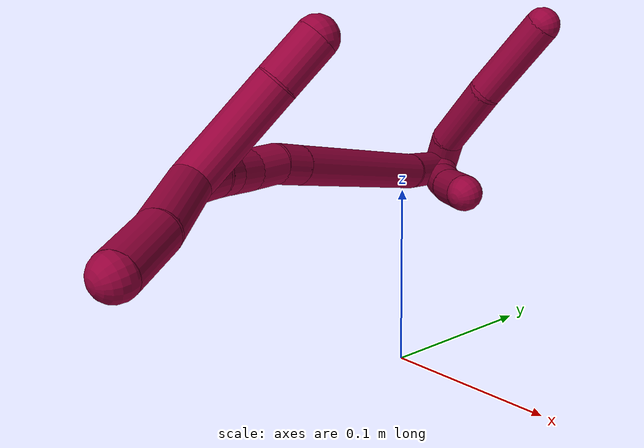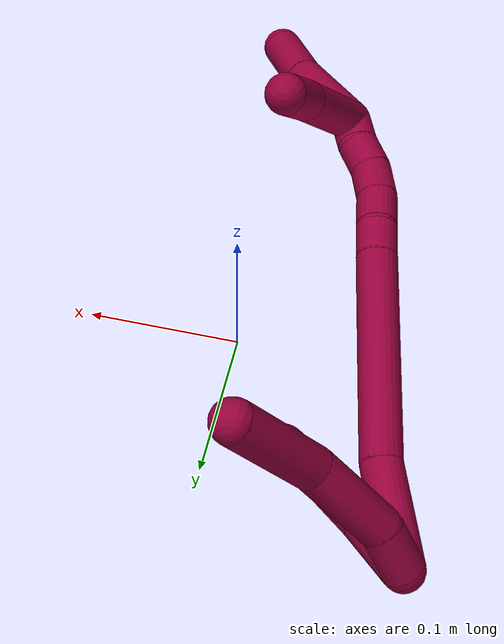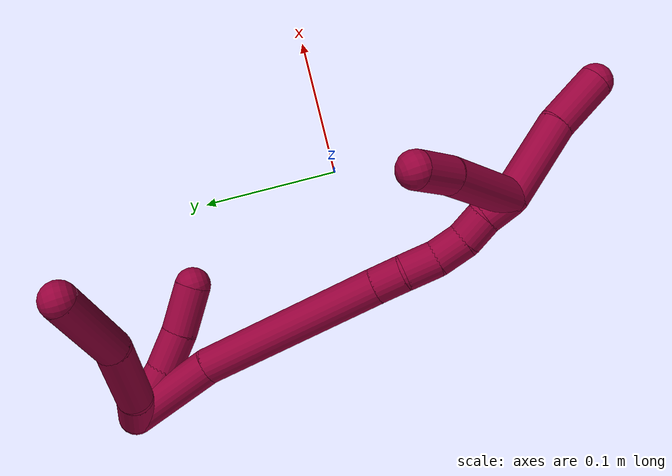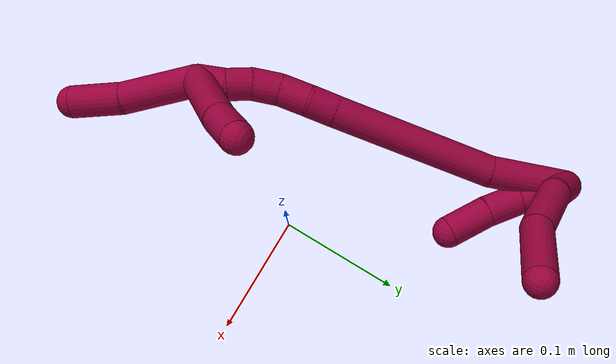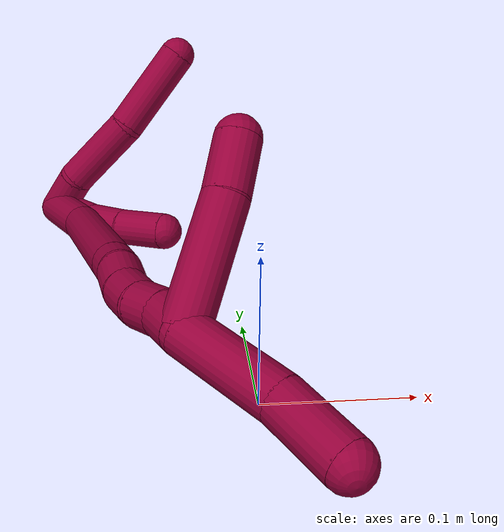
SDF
<sdf version="1.7">
 <world name="default">
  <model name="8">
   <static>0</static>
   <link name="8">
    <collision name="collision-cylinder-e_1_2_8">
     <pose>0.001794 -0.015253 -0.001943 1.69748 0.116135 0.131822</pose>
     <geometry><cylinder><radius>0.0125</radius><length>0.030962</length></cylinder></geometry>
     <surface>
      <friction><ode><mu>1.16</mu><mu2>1.16</mu2><slip1>0</slip1><slip2>0</slip2></ode></friction>
      <contact><ode><kp>1e+06</kp><kd>1</kd><max_vel>0</max_vel><min_depth>0.001</min_depth></ode></contact>
     </surface>
    </collision>
    <visual name="visual-cylinder-e_1_2_8">
     <pose>0.001794 -0.015253 -0.001943 1.69748 0.116135 0.131822</pose>
     <geometry><cylinder><radius>0.0125</radius><length>0.030962</length></cylinder></geometry>
     <material><ambient>0.584314 0 0.227451 1</ambient></material>
    </visual>
    <collision name="collision-cylinder-e_2_8_9">
     <pose>0.013444 -0.056496 -0.00313 1.54174 0.36233 0.352168</pose>
     <geometry><cylinder><radius>0.0125</radius><length>0.055611</length></cylinder></geometry>
     <surface>
      <friction><ode><mu>1.16</mu><mu2>1.16</mu2><slip1>0</slip1><slip2>0</slip2></ode></friction>
      <contact><ode><kp>1e+06</kp><kd>1</kd><max_vel>0</max_vel><min_depth>0.001</min_depth></ode></contact>
     </surface>
    </collision>
    <visual name="visual-cylinder-e_2_8_9">
     <pose>0.013444 -0.056496 -0.00313 1.54174 0.36233 0.352168</pose>
     <geometry><cylinder><radius>0.0125</radius><length>0.055611</length></cylinder></geometry>
     <material><ambient>0.584314 0 0.227451 1</ambient></material>
    </visual>
    <collision name="collision-cylinder-e_3_9_6">
     <pose>0.032714 -0.111252 0.007091 1.25291 0.301397 0.218908</pose>
     <geometry><cylinder><radius>0.0125</radius><length>0.063427</length></cylinder></geometry>
     <surface>
      <friction><ode><mu>1.16</mu><mu2>1.16</mu2><slip1>0</slip1><slip2>0</slip2></ode></friction>
      <contact><ode><kp>1e+06</kp><kd>1</kd><max_vel>0</max_vel><min_depth>0.001</min_depth></ode></contact>
     </surface>
    </collision>
    <visual name="visual-cylinder-e_3_9_6">
     <pose>0.032714 -0.111252 0.007091 1.25291 0.301397 0.218908</pose>
     <geometry><cylinder><radius>0.0125</radius><length>0.063427</length></cylinder></geometry>
     <material><ambient>0.584314 0 0.227451 1</ambient></material>
    </visual>
    <collision name="collision-cylinder-e_1_2_10">
     <pose>0.011022 -0.006192 -0.013712 2.71743 0.632267 1.97728</pose>
     <geometry><cylinder><radius>0.0125</radius><length>0.037301</length></cylinder></geometry>
     <surface>
      <friction><ode><mu>1.16</mu><mu2>1.16</mu2><slip1>0</slip1><slip2>0</slip2></ode></friction>
      <contact><ode><kp>1e+06</kp><kd>1</kd><max_vel>0</max_vel><min_depth>0.001</min_depth></ode></contact>
     </surface>
    </collision>
    <visual name="visual-cylinder-e_1_2_10">
     <pose>0.011022 -0.006192 -0.013712 2.71743 0.632267 1.97728</pose>
     <geometry><cylinder><radius>0.0125</radius><length>0.037301</length></cylinder></geometry>
     <material><ambient>0.584314 0 0.227451 1</ambient></material>
    </visual>
    <collision name="collision-cylinder-e_2_10_11">
     <pose>0.030991 -0.018698 -0.036527 2.53514 0.679354 1.69222</pose>
     <geometry><cylinder><radius>0.0125</radius><length>0.02848</length></cylinder></geometry>
     <surface>
      <friction><ode><mu>1.16</mu><mu2>1.16</mu2><slip1>0</slip1><slip2>0</slip2></ode></friction>
      <contact><ode><kp>1e+06</kp><kd>1</kd><max_vel>0</max_vel><min_depth>0.001</min_depth></ode></contact>
     </surface>
    </collision>
    <visual name="visual-cylinder-e_2_10_11">
     <pose>0.030991 -0.018698 -0.036527 2.53514 0.679354 1.69222</pose>
     <geometry><cylinder><radius>0.0125</radius><length>0.02848</length></cylinder></geometry>
     <material><ambient>0.584314 0 0.227451 1</ambient></material>
    </visual>
    <collision name="collision-cylinder-e_3_11_5">
     <pose>0.051714 -0.033212 -0.054948 2.41992 0.75908 1.62623</pose>
     <geometry><cylinder><radius>0.0125</radius><length>0.034218</length></cylinder></geometry>
     <surface>
      <friction><ode><mu>1.16</mu><mu2>1.16</mu2><slip1>0</slip1><slip2>0</slip2></ode></friction>
      <contact><ode><kp>1e+06</kp><kd>1</kd><max_vel>0</max_vel><min_depth>0.001</min_depth></ode></contact>
     </surface>
    </collision>
    <visual name="visual-cylinder-e_3_11_5">
     <pose>0.051714 -0.033212 -0.054948 2.41992 0.75908 1.62623</pose>
     <geometry><cylinder><radius>0.0125</radius><length>0.034218</length></cylinder></geometry>
     <material><ambient>0.584314 0 0.227451 1</ambient></material>
    </visual>
    <collision name="collision-cylinder-e_1_2_12">
     <pose>0.004926 -0.012339 -0.02816 2.72861 0.158871 0.726303</pose>
     <geometry><cylinder><radius>0.0125</radius><length>0.062274</length></cylinder></geometry>
     <surface>
      <friction><ode><mu>1.16</mu><mu2>1.16</mu2><slip1>0</slip1><slip2>0</slip2></ode></friction>
      <contact><ode><kp>1e+06</kp><kd>1</kd><max_vel>0</max_vel><min_depth>0.001</min_depth></ode></contact>
     </surface>
    </collision>
    <visual name="visual-cylinder-e_1_2_12">
     <pose>0.004926 -0.012339 -0.02816 2.72861 0.158871 0.726303</pose>
     <geometry><cylinder><radius>0.0125</radius><length>0.062274</length></cylinder></geometry>
     <material><ambient>0.584314 0 0.227451 1</ambient></material>
    </visual>
    <collision name="collision-cylinder-e_2_12_13">
     <pose>0.008859 -0.050342 -0.116281 2.73719 -0.015219 -0.074203</pose>
     <geometry><cylinder><radius>0.0125</radius><length>0.13046</length></cylinder></geometry>
     <surface>
      <friction><ode><mu>1.16</mu><mu2>1.16</mu2><slip1>0</slip1><slip2>0</slip2></ode></friction>
      <contact><ode><kp>1e+06</kp><kd>1</kd><max_vel>0</max_vel><min_depth>0.001</min_depth></ode></contact>
     </surface>
    </collision>
    <visual name="visual-cylinder-e_2_12_13">
     <pose>0.008859 -0.050342 -0.116281 2.73719 -0.015219 -0.074203</pose>
     <geometry><cylinder><radius>0.0125</radius><length>0.13046</length></cylinder></geometry>
     <material><ambient>0.584314 0 0.227451 1</ambient></material>
    </visual>
    <collision name="collision-cylinder-e_3_13_14">
     <pose>0.007554 -0.080139 -0.185905 2.73726 -0.029772 -0.145011</pose>
     <geometry><cylinder><radius>0.0125</radius><length>0.021029</length></cylinder></geometry>
     <surface>
      <friction><ode><mu>1.16</mu><mu2>1.16</mu2><slip1>0</slip1><slip2>0</slip2></ode></friction>
      <contact><ode><kp>1e+06</kp><kd>1</kd><max_vel>0</max_vel><min_depth>0.001</min_depth></ode></contact>
     </surface>
    </collision>
    <visual name="visual-cylinder-e_3_13_14">
     <pose>0.007554 -0.080139 -0.185905 2.73726 -0.029772 -0.145011</pose>
     <geometry><cylinder><radius>0.0125</radius><length>0.021029</length></cylinder></geometry>
     <material><ambient>0.584314 0 0.227451 1</ambient></material>
    </visual>
    <collision name="collision-cylinder-e_4_14_15">
     <pose>0.007509 -0.086626 -0.206907 2.9371 0.023192 0.225091</pose>
     <geometry><cylinder><radius>0.0125</radius><length>0.023167</length></cylinder></geometry>
     <surface>
      <friction><ode><mu>1.16</mu><mu2>1.16</mu2><slip1>0</slip1><slip2>0</slip2></ode></friction>
      <contact><ode><kp>1e+06</kp><kd>1</kd><max_vel>0</max_vel><min_depth>0.001</min_depth></ode></contact>
     </surface>
    </collision>
    <visual name="visual-cylinder-e_4_14_15">
     <pose>0.007509 -0.086626 -0.206907 2.9371 0.023192 0.225091</pose>
     <geometry><cylinder><radius>0.0125</radius><length>0.023167</length></cylinder></geometry>
     <material><ambient>0.584314 0 0.227451 1</ambient></material>
    </visual>
    <collision name="collision-cylinder-e_5_15_16">
     <pose>0.009545 -0.092786 -0.228362 2.7815 0.162082 0.839395</pose>
     <geometry><cylinder><radius>0.0125</radius><length>0.021905</length></cylinder></geometry>
     <surface>
      <friction><ode><mu>1.16</mu><mu2>1.16</mu2><slip1>0</slip1><slip2>0</slip2></ode></friction>
      <contact><ode><kp>1e+06</kp><kd>1</kd><max_vel>0</max_vel><min_depth>0.001</min_depth></ode></contact>
     </surface>
    </collision>
    <visual name="visual-cylinder-e_5_15_16">
     <pose>0.009545 -0.092786 -0.228362 2.7815 0.162082 0.839395</pose>
     <geometry><cylinder><radius>0.0125</radius><length>0.021905</length></cylinder></geometry>
     <material><ambient>0.584314 0 0.227451 1</ambient></material>
    </visual>
    <collision name="collision-cylinder-e_6_16_17">
     <pose>0.014911 -0.101283 -0.24661 2.61866 0.366033 1.21023</pose>
     <geometry><cylinder><radius>0.0125</radius><length>0.020106</length></cylinder></geometry>
     <surface>
      <friction><ode><mu>1.16</mu><mu2>1.16</mu2><slip1>0</slip1><slip2>0</slip2></ode></friction>
      <contact><ode><kp>1e+06</kp><kd>1</kd><max_vel>0</max_vel><min_depth>0.001</min_depth></ode></contact>
     </surface>
    </collision>
    <visual name="visual-cylinder-e_6_16_17">
     <pose>0.014911 -0.101283 -0.24661 2.61866 0.366033 1.21023</pose>
     <geometry><cylinder><radius>0.0125</radius><length>0.020106</length></cylinder></geometry>
     <material><ambient>0.584314 0 0.227451 1</ambient></material>
    </visual>
    <collision name="collision-cylinder-e_7_17_1">
     <pose>0.020842 -0.109327 -0.264446 2.80864 0.223391 1.17717</pose>
     <geometry><cylinder><radius>0.0125</radius><length>0.021059</length></cylinder></geometry>
     <surface>
      <friction><ode><mu>1.16</mu><mu2>1.16</mu2><slip1>0</slip1><slip2>0</slip2></ode></friction>
      <contact><ode><kp>1e+06</kp><kd>1</kd><max_vel>0</max_vel><min_depth>0.001</min_depth></ode></contact>
     </surface>
    </collision>
    <visual name="visual-cylinder-e_7_17_1">
     <pose>0.020842 -0.109327 -0.264446 2.80864 0.223391 1.17717</pose>
     <geometry><cylinder><radius>0.0125</radius><length>0.021059</length></cylinder></geometry>
     <material><ambient>0.584314 0 0.227451 1</ambient></material>
    </visual>
    <collision name="collision-cylinder-e_1_1_18">
     <pose>0.026857 -0.137227 -0.250836 0.81108 0.108375 0.046567</pose>
     <geometry><cylinder><radius>0.0125</radius><length>0.068104</length></cylinder></geometry>
     <surface>
      <friction><ode><mu>1.16</mu><mu2>1.16</mu2><slip1>0</slip1><slip2>0</slip2></ode></friction>
      <contact><ode><kp>1e+06</kp><kd>1</kd><max_vel>0</max_vel><min_depth>0.001</min_depth></ode></contact>
     </surface>
    </collision>
    <visual name="visual-cylinder-e_1_1_18">
     <pose>0.026857 -0.137227 -0.250836 0.81108 0.108375 0.046567</pose>
     <geometry><cylinder><radius>0.0125</radius><length>0.068104</length></cylinder></geometry>
     <material><ambient>0.584314 0 0.227451 1</ambient></material>
    </visual>
    <collision name="collision-cylinder-e_2_18_4">
     <pose>0.031261 -0.172247 -0.215518 0.717582 0.045178 0.016945</pose>
     <geometry><cylinder><radius>0.0125</radius><length>0.031896</length></cylinder></geometry>
     <surface>
      <friction><ode><mu>1.16</mu><mu2>1.16</mu2><slip1>0</slip1><slip2>0</slip2></ode></friction>
      <contact><ode><kp>1e+06</kp><kd>1</kd><max_vel>0</max_vel><min_depth>0.001</min_depth></ode></contact>
     </surface>
    </collision>
    <visual name="visual-cylinder-e_2_18_4">
     <pose>0.031261 -0.172247 -0.215518 0.717582 0.045178 0.016945</pose>
     <geometry><cylinder><radius>0.0125</radius><length>0.031896</length></cylinder></geometry>
     <material><ambient>0.584314 0 0.227451 1</ambient></material>
    </visual>
    <collision name="collision-cylinder-e_1_1_19">
     <pose>0.040239 -0.11858 -0.297641 2.89561 0.613799 2.39777</pose>
     <geometry><cylinder><radius>0.0125</radius><length>0.059255</length></cylinder></geometry>
     <surface>
      <friction><ode><mu>1.16</mu><mu2>1.16</mu2><slip1>0</slip1><slip2>0</slip2></ode></friction>
      <contact><ode><kp>1e+06</kp><kd>1</kd><max_vel>0</max_vel><min_depth>0.001</min_depth></ode></contact>
     </surface>
    </collision>
    <visual name="visual-cylinder-e_1_1_19">
     <pose>0.040239 -0.11858 -0.297641 2.89561 0.613799 2.39777</pose>
     <geometry><cylinder><radius>0.0125</radius><length>0.059255</length></cylinder></geometry>
     <material><ambient>0.584314 0 0.227451 1</ambient></material>
    </visual>
    <collision name="collision-cylinder-e_2_19_3">
     <pose>0.066422 -0.127431 -0.339108 2.9788 0.464058 2.47672</pose>
     <geometry><cylinder><radius>0.0125</radius><length>0.040745</length></cylinder></geometry>
     <surface>
      <friction><ode><mu>1.16</mu><mu2>1.16</mu2><slip1>0</slip1><slip2>0</slip2></ode></friction>
      <contact><ode><kp>1e+06</kp><kd>1</kd><max_vel>0</max_vel><min_depth>0.001</min_depth></ode></contact>
     </surface>
    </collision>
    <visual name="visual-cylinder-e_2_19_3">
     <pose>0.066422 -0.127431 -0.339108 2.9788 0.464058 2.47672</pose>
     <geometry><cylinder><radius>0.0125</radius><length>0.040745</length></cylinder></geometry>
     <material><ambient>0.584314 0 0.227451 1</ambient></material>
    </visual>
    <collision name="collision-sphere-3">
     <pose>0.07554 -0.130383 -0.357085 0 -0 0</pose>
     <geometry><sphere><radius>0.0125</radius></sphere></geometry>
     <surface>
      <friction><ode><mu>1.16</mu><mu2>1.16</mu2><slip1>0</slip1><slip2>0</slip2></ode></friction>
      <contact><ode><kp>1e+06</kp><kd>1</kd><max_vel>0</max_vel><min_depth>0.001</min_depth></ode></contact>
     </surface>
    </collision>
    <visual name="visual-sphere-3">
     <pose>0.07554 -0.130383 -0.357085 0 -0 0</pose>
     <geometry><sphere><radius>0.0125</radius></sphere></geometry>
     <material><ambient>0.584314 0 0.227451 1</ambient></material>
    </visual>
    <collision name="collision-sphere-19">
     <pose>0.057304 -0.124478 -0.321131 0 -0 0</pose>
     <geometry><sphere><radius>0.0125</radius></sphere></geometry>
     <surface>
      <friction><ode><mu>1.16</mu><mu2>1.16</mu2><slip1>0</slip1><slip2>0</slip2></ode></friction>
      <contact><ode><kp>1e+06</kp><kd>1</kd><max_vel>0</max_vel><min_depth>0.001</min_depth></ode></contact>
     </surface>
    </collision>
    <visual name="visual-sphere-19">
     <pose>0.057304 -0.124478 -0.321131 0 -0 0</pose>
     <geometry><sphere><radius>0.0125</radius></sphere></geometry>
     <material><ambient>0.584314 0 0.227451 1</ambient></material>
    </visual>
    <collision name="collision-sphere-11">
     <pose>0.039938 -0.025012 -0.04563 0 -0 0</pose>
     <geometry><sphere><radius>0.0125</radius></sphere></geometry>
     <surface>
      <friction><ode><mu>1.16</mu><mu2>1.16</mu2><slip1>0</slip1><slip2>0</slip2></ode></friction>
      <contact><ode><kp>1e+06</kp><kd>1</kd><max_vel>0</max_vel><min_depth>0.001</min_depth></ode></contact>
     </surface>
    </collision>
    <visual name="visual-sphere-11">
     <pose>0.039938 -0.025012 -0.04563 0 -0 0</pose>
     <geometry><sphere><radius>0.0125</radius></sphere></geometry>
     <material><ambient>0.584314 0 0.227451 1</ambient></material>
    </visual>
    <collision name="collision-sphere-10">
     <pose>0.022044 -0.012384 -0.027424 0 -0 0</pose>
     <geometry><sphere><radius>0.0125</radius></sphere></geometry>
     <surface>
      <friction><ode><mu>1.16</mu><mu2>1.16</mu2><slip1>0</slip1><slip2>0</slip2></ode></friction>
      <contact><ode><kp>1e+06</kp><kd>1</kd><max_vel>0</max_vel><min_depth>0.001</min_depth></ode></contact>
     </surface>
    </collision>
    <visual name="visual-sphere-10">
     <pose>0.022044 -0.012384 -0.027424 0 -0 0</pose>
     <geometry><sphere><radius>0.0125</radius></sphere></geometry>
     <material><ambient>0.584314 0 0.227451 1</ambient></material>
    </visual>
    <collision name="collision-sphere-6">
     <pose>0.042128 -0.140019 0.016556 0 -0 0</pose>
     <geometry><sphere><radius>0.0125</radius></sphere></geometry>
     <surface>
      <friction><ode><mu>1.16</mu><mu2>1.16</mu2><slip1>0</slip1><slip2>0</slip2></ode></friction>
      <contact><ode><kp>1e+06</kp><kd>1</kd><max_vel>0</max_vel><min_depth>0.001</min_depth></ode></contact>
     </surface>
    </collision>
    <visual name="visual-sphere-6">
     <pose>0.042128 -0.140019 0.016556 0 -0 0</pose>
     <geometry><sphere><radius>0.0125</radius></sphere></geometry>
     <material><ambient>0.584314 0 0.227451 1</ambient></material>
    </visual>
    <collision name="collision-sphere-9">
     <pose>0.023299 -0.082486 -0.002375 0 -0 0</pose>
     <geometry><sphere><radius>0.0125</radius></sphere></geometry>
     <surface>
      <friction><ode><mu>1.16</mu><mu2>1.16</mu2><slip1>0</slip1><slip2>0</slip2></ode></friction>
      <contact><ode><kp>1e+06</kp><kd>1</kd><max_vel>0</max_vel><min_depth>0.001</min_depth></ode></contact>
     </surface>
    </collision>
    <visual name="visual-sphere-9">
     <pose>0.023299 -0.082486 -0.002375 0 -0 0</pose>
     <geometry><sphere><radius>0.0125</radius></sphere></geometry>
     <material><ambient>0.584314 0 0.227451 1</ambient></material>
    </visual>
    <collision name="collision-sphere-2">
     <geometry><sphere><radius>0.0125</radius></sphere></geometry>
     <surface>
      <friction><ode><mu>1.16</mu><mu2>1.16</mu2><slip1>0</slip1><slip2>0</slip2></ode></friction>
      <contact><ode><kp>1e+06</kp><kd>1</kd><max_vel>0</max_vel><min_depth>0.001</min_depth></ode></contact>
     </surface>
    </collision>
    <visual name="visual-sphere-2">
     <geometry><sphere><radius>0.0125</radius></sphere></geometry>
     <material><ambient>0.584314 0 0.227451 1</ambient></material>
    </visual>
    <collision name="collision-sphere-8">
     <pose>0.003588 -0.030507 -0.003885 0 -0 0</pose>
     <geometry><sphere><radius>0.0125</radius></sphere></geometry>
     <surface>
      <friction><ode><mu>1.16</mu><mu2>1.16</mu2><slip1>0</slip1><slip2>0</slip2></ode></friction>
      <contact><ode><kp>1e+06</kp><kd>1</kd><max_vel>0</max_vel><min_depth>0.001</min_depth></ode></contact>
     </surface>
    </collision>
    <visual name="visual-sphere-8">
     <pose>0.003588 -0.030507 -0.003885 0 -0 0</pose>
     <geometry><sphere><radius>0.0125</radius></sphere></geometry>
     <material><ambient>0.584314 0 0.227451 1</ambient></material>
    </visual>
    <collision name="collision-sphere-5">
     <pose>0.063489 -0.041413 -0.064266 0 -0 0</pose>
     <geometry><sphere><radius>0.0125</radius></sphere></geometry>
     <surface>
      <friction><ode><mu>1.16</mu><mu2>1.16</mu2><slip1>0</slip1><slip2>0</slip2></ode></friction>
      <contact><ode><kp>1e+06</kp><kd>1</kd><max_vel>0</max_vel><min_depth>0.001</min_depth></ode></contact>
     </surface>
    </collision>
    <visual name="visual-sphere-5">
     <pose>0.063489 -0.041413 -0.064266 0 -0 0</pose>
     <geometry><sphere><radius>0.0125</radius></sphere></geometry>
     <material><ambient>0.584314 0 0.227451 1</ambient></material>
    </visual>
    <collision name="collision-sphere-12">
     <pose>0.009852 -0.024678 -0.05632 0 -0 0</pose>
     <geometry><sphere><radius>0.0125</radius></sphere></geometry>
     <surface>
      <friction><ode><mu>1.16</mu><mu2>1.16</mu2><slip1>0</slip1><slip2>0</slip2></ode></friction>
      <contact><ode><kp>1e+06</kp><kd>1</kd><max_vel>0</max_vel><min_depth>0.001</min_depth></ode></contact>
     </surface>
    </collision>
    <visual name="visual-sphere-12">
     <pose>0.009852 -0.024678 -0.05632 0 -0 0</pose>
     <geometry><sphere><radius>0.0125</radius></sphere></geometry>
     <material><ambient>0.584314 0 0.227451 1</ambient></material>
    </visual>
    <collision name="collision-sphere-13">
     <pose>0.007867 -0.076005 -0.176243 0 -0 0</pose>
     <geometry><sphere><radius>0.0125</radius></sphere></geometry>
     <surface>
      <friction><ode><mu>1.16</mu><mu2>1.16</mu2><slip1>0</slip1><slip2>0</slip2></ode></friction>
      <contact><ode><kp>1e+06</kp><kd>1</kd><max_vel>0</max_vel><min_depth>0.001</min_depth></ode></contact>
     </surface>
    </collision>
    <visual name="visual-sphere-13">
     <pose>0.007867 -0.076005 -0.176243 0 -0 0</pose>
     <geometry><sphere><radius>0.0125</radius></sphere></geometry>
     <material><ambient>0.584314 0 0.227451 1</ambient></material>
    </visual>
    <collision name="collision-sphere-14">
     <pose>0.007241 -0.084274 -0.195568 0 -0 0</pose>
     <geometry><sphere><radius>0.0125</radius></sphere></geometry>
     <surface>
      <friction><ode><mu>1.16</mu><mu2>1.16</mu2><slip1>0</slip1><slip2>0</slip2></ode></friction>
      <contact><ode><kp>1e+06</kp><kd>1</kd><max_vel>0</max_vel><min_depth>0.001</min_depth></ode></contact>
     </surface>
    </collision>
    <visual name="visual-sphere-14">
     <pose>0.007241 -0.084274 -0.195568 0 -0 0</pose>
     <geometry><sphere><radius>0.0125</radius></sphere></geometry>
     <material><ambient>0.584314 0 0.227451 1</ambient></material>
    </visual>
    <collision name="collision-sphere-15">
     <pose>0.007778 -0.088977 -0.218246 0 -0 0</pose>
     <geometry><sphere><radius>0.0125</radius></sphere></geometry>
     <surface>
      <friction><ode><mu>1.16</mu><mu2>1.16</mu2><slip1>0</slip1><slip2>0</slip2></ode></friction>
      <contact><ode><kp>1e+06</kp><kd>1</kd><max_vel>0</max_vel><min_depth>0.001</min_depth></ode></contact>
     </surface>
    </collision>
    <visual name="visual-sphere-15">
     <pose>0.007778 -0.088977 -0.218246 0 -0 0</pose>
     <geometry><sphere><radius>0.0125</radius></sphere></geometry>
     <material><ambient>0.584314 0 0.227451 1</ambient></material>
    </visual>
    <collision name="collision-sphere-16">
     <pose>0.011313 -0.096595 -0.238477 0 -0 0</pose>
     <geometry><sphere><radius>0.0125</radius></sphere></geometry>
     <surface>
      <friction><ode><mu>1.16</mu><mu2>1.16</mu2><slip1>0</slip1><slip2>0</slip2></ode></friction>
      <contact><ode><kp>1e+06</kp><kd>1</kd><max_vel>0</max_vel><min_depth>0.001</min_depth></ode></contact>
     </surface>
    </collision>
    <visual name="visual-sphere-16">
     <pose>0.011313 -0.096595 -0.238477 0 -0 0</pose>
     <geometry><sphere><radius>0.0125</radius></sphere></geometry>
     <material><ambient>0.584314 0 0.227451 1</ambient></material>
    </visual>
    <collision name="collision-sphere-17">
     <pose>0.018509 -0.105971 -0.254743 0 -0 0</pose>
     <geometry><sphere><radius>0.0125</radius></sphere></geometry>
     <surface>
      <friction><ode><mu>1.16</mu><mu2>1.16</mu2><slip1>0</slip1><slip2>0</slip2></ode></friction>
      <contact><ode><kp>1e+06</kp><kd>1</kd><max_vel>0</max_vel><min_depth>0.001</min_depth></ode></contact>
     </surface>
    </collision>
    <visual name="visual-sphere-17">
     <pose>0.018509 -0.105971 -0.254743 0 -0 0</pose>
     <geometry><sphere><radius>0.0125</radius></sphere></geometry>
     <material><ambient>0.584314 0 0.227451 1</ambient></material>
    </visual>
    <collision name="collision-sphere-1">
     <pose>0.023174 -0.112683 -0.27415 0 -0 0</pose>
     <geometry><sphere><radius>0.0125</radius></sphere></geometry>
     <surface>
      <friction><ode><mu>1.16</mu><mu2>1.16</mu2><slip1>0</slip1><slip2>0</slip2></ode></friction>
      <contact><ode><kp>1e+06</kp><kd>1</kd><max_vel>0</max_vel><min_depth>0.001</min_depth></ode></contact>
     </surface>
    </collision>
    <visual name="visual-sphere-1">
     <pose>0.023174 -0.112683 -0.27415 0 -0 0</pose>
     <geometry><sphere><radius>0.0125</radius></sphere></geometry>
     <material><ambient>0.584314 0 0.227451 1</ambient></material>
    </visual>
    <collision name="collision-sphere-18">
     <pose>0.030541 -0.161771 -0.227521 0 -0 0</pose>
     <geometry><sphere><radius>0.0125</radius></sphere></geometry>
     <surface>
      <friction><ode><mu>1.16</mu><mu2>1.16</mu2><slip1>0</slip1><slip2>0</slip2></ode></friction>
      <contact><ode><kp>1e+06</kp><kd>1</kd><max_vel>0</max_vel><min_depth>0.001</min_depth></ode></contact>
     </surface>
    </collision>
    <visual name="visual-sphere-18">
     <pose>0.030541 -0.161771 -0.227521 0 -0 0</pose>
     <geometry><sphere><radius>0.0125</radius></sphere></geometry>
     <material><ambient>0.584314 0 0.227451 1</ambient></material>
    </visual>
    <collision name="collision-sphere-4">
     <pose>0.031981 -0.182723 -0.203515 0 -0 0</pose>
     <geometry><sphere><radius>0.0125</radius></sphere></geometry>
     <surface>
      <friction><ode><mu>1.16</mu><mu2>1.16</mu2><slip1>0</slip1><slip2>0</slip2></ode></friction>
      <contact><ode><kp>1e+06</kp><kd>1</kd><max_vel>0</max_vel><min_depth>0.001</min_depth></ode></contact>
     </surface>
    </collision>
    <visual name="visual-sphere-4">
     <pose>0.031981 -0.182723 -0.203515 0 -0 0</pose>
     <geometry><sphere><radius>0.0125</radius></sphere></geometry>
     <material><ambient>0.584314 0 0.227451 1</ambient></material>
    </visual>
    <inertial>
     <pose>0.022135 -0.076037 -0.133044 0 -0 0</pose>
     <mass>0.75</mass>
     <inertia>
      <ixx>0.000322</ixx>
      <ixy>0</ixy>
      <ixz>0</ixz>
      <iyy>-0.000119</iyy>
      <iyz>0</iyz>
      <izz>9.3e-05</izz>
     </inertia>
    </inertial>
   </link>
   <pose>-0.133188 0.175093 0.068229 -1.37606 0.384681 0.144437</pose>
  </model>
 </world>
</sdf>
